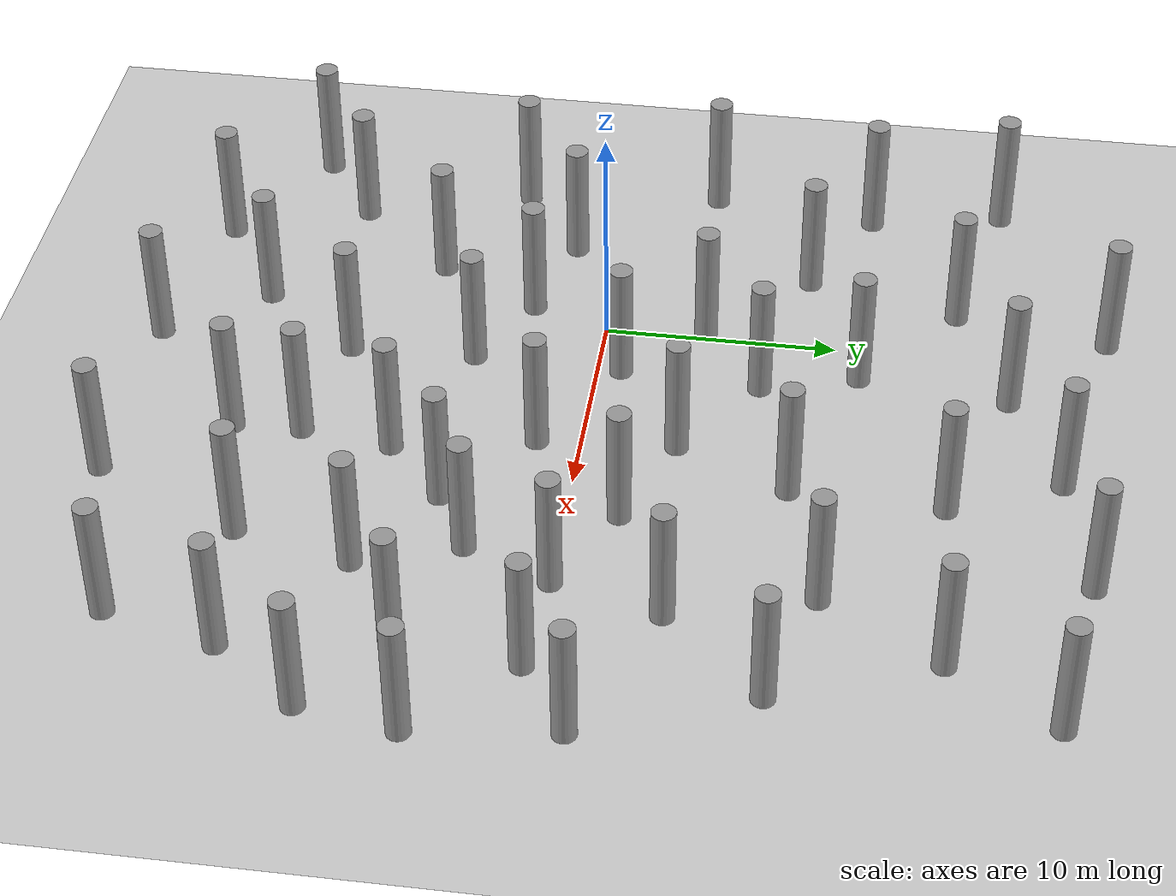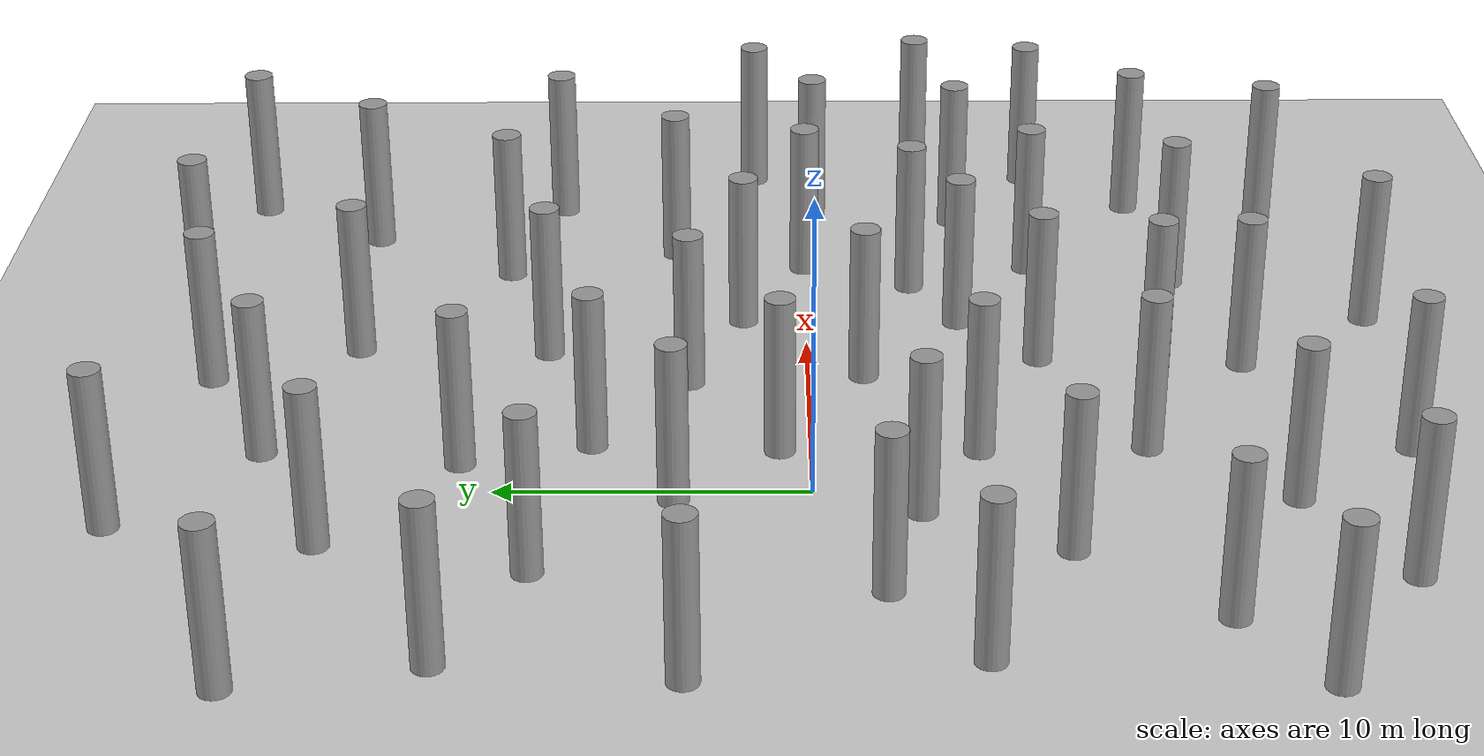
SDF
<sdf version="1.6">
 <world name="default">
  <model name="ground_plane">
   <static>1</static>
   <link name="link">
    <collision name="collision">
     <geometry><plane><normal>0 0 1</normal><size>400 400</size></plane></geometry>
     <surface><friction><ode><mu>100</mu><mu2>50</mu2></ode></friction></surface>
    </collision>
    <visual name="visual">
     <cast_shadows>0</cast_shadows>
     <geometry><plane><normal>0 0 1</normal><size>200 200</size></plane></geometry>
     <material>
      <script><uri>file://media/materials/scripts/gazebo.material</uri><name>Gazebo/Grey</name></script>
     </material>
    </visual>
    <gravity>0</gravity>
   </link>
  </model>
  <model name="unit_cylinder_0_clone_14_clone_9_clone_1">
   <static>1</static>
   <pose>24.5651 -4.32645 2.40172 0 -0 0.001073</pose>
   <link name="link">
    <inertial>
     <mass>1</mass>
     <inertia><ixx>0.145833</ixx><ixy>0</ixy><ixz>0</ixz><iyy>0.145833</iyy><iyz>0</iyz><izz>0.125</izz></inertia>
    </inertial>
    <collision name="collision">
     <geometry><cylinder><radius>0.5</radius><length>6.03342</length></cylinder></geometry>
     <surface><contact><collide_without_contact>1</collide_without_contact></contact></surface>
    </collision>
    <visual name="visual">
     <geometry><cylinder><radius>0.5</radius><length>6.03342</length></cylinder></geometry>
     <material>
      <script><name>Gazebo/Grey</name><uri>file://media/materials/scripts/gazebo.material</uri></script>
     </material>
    </visual>
    <gravity>0</gravity>
   </link>
  </model>
  <model name="unit_cylinder_0_clone_14_clone_9_clone_5">
   <static>1</static>
   <pose>23.8422 1.77062 2.40172 0 -0 0.001073</pose>
   <link name="link">
    <inertial>
     <mass>1</mass>
     <inertia><ixx>0.145833</ixx><ixy>0</ixy><ixz>0</ixz><iyy>0.145833</iyy><iyz>0</iyz><izz>0.125</izz></inertia>
    </inertial>
    <collision name="collision">
     <geometry><cylinder><radius>0.5</radius><length>6.03342</length></cylinder></geometry>
     <surface><contact><collide_without_contact>1</collide_without_contact></contact></surface>
    </collision>
    <visual name="visual">
     <geometry><cylinder><radius>0.5</radius><length>6.03342</length></cylinder></geometry>
     <material>
      <script><name>Gazebo/Grey</name><uri>file://media/materials/scripts/gazebo.material</uri></script>
     </material>
    </visual>
    <gravity>0</gravity>
   </link>
  </model>
  <model name="unit_cylinder_0_clone_14_clone_9_clone_6_clone">
   <static>1</static>
   <pose>17.2344 4.59319 2.40172 0 -0 0.001073</pose>
   <link name="link">
    <inertial>
     <mass>1</mass>
     <inertia><ixx>0.145833</ixx><ixy>0</ixy><ixz>0</ixz><iyy>0.145833</iyy><iyz>0</iyz><izz>0.125</izz></inertia>
    </inertial>
    <collision name="collision">
     <geometry><cylinder><radius>0.5</radius><length>6.03342</length></cylinder></geometry>
     <surface><contact><collide_without_contact>1</collide_without_contact></contact></surface>
    </collision>
    <visual name="visual">
     <geometry><cylinder><radius>0.5</radius><length>6.03342</length></cylinder></geometry>
     <material>
      <script><name>Gazebo/Grey</name><uri>file://media/materials/scripts/gazebo.material</uri></script>
     </material>
    </visual>
    <gravity>0</gravity>
   </link>
  </model>
  <model name="unit_cylinder_0_clone_14_clone_9_clone_6_clone_0">
   <static>1</static>
   <pose>16 0 2.40172 0 -0 0.001073</pose>
   <link name="link">
    <inertial>
     <mass>1</mass>
     <inertia><ixx>0.145833</ixx><ixy>0</ixy><ixz>0</ixz><iyy>0.145833</iyy><iyz>0</iyz><izz>0.125</izz></inertia>
    </inertial>
    <collision name="collision">
     <geometry><cylinder><radius>0.5</radius><length>6.03342</length></cylinder></geometry>
     <surface><contact><collide_without_contact>1</collide_without_contact></contact></surface>
    </collision>
    <visual name="visual">
     <geometry><cylinder><radius>0.5</radius><length>6.03342</length></cylinder></geometry>
     <material>
      <script><name>Gazebo/Grey</name><uri>file://media/materials/scripts/gazebo.material</uri></script>
     </material>
    </visual>
    <gravity>0</gravity>
   </link>
  </model>
  <model name="unit_cylinder_0_clone_14_clone_9_clone_6_clone_1">
   <static>1</static>
   <pose>15.9275 -8.02091 2.40172 0 -0 0.001073</pose>
   <link name="link">
    <inertial>
     <mass>1</mass>
     <inertia><ixx>0.145833</ixx><ixy>0</ixy><ixz>0</ixz><iyy>0.145833</iyy><iyz>0</iyz><izz>0.125</izz></inertia>
    </inertial>
    <collision name="collision">
     <geometry><cylinder><radius>0.5</radius><length>6.03342</length></cylinder></geometry>
     <surface><contact><collide_without_contact>1</collide_without_contact></contact></surface>
    </collision>
    <visual name="visual">
     <geometry><cylinder><radius>0.5</radius><length>6.03342</length></cylinder></geometry>
     <material>
      <script><name>Gazebo/Grey</name><uri>file://media/materials/scripts/gazebo.material</uri></script>
     </material>
    </visual>
    <gravity>0</gravity>
   </link>
  </model>
  <model name="unit_cylinder_0_clone_14_clone_9_clone_6_clone_3">
   <static>1</static>
   <pose>15.5728 10.4838 2.40172 0 -0 0.001073</pose>
   <link name="link">
    <inertial>
     <mass>1</mass>
     <inertia><ixx>0.145833</ixx><ixy>0</ixy><ixz>0</ixz><iyy>0.145833</iyy><iyz>0</iyz><izz>0.125</izz></inertia>
    </inertial>
    <collision name="collision">
     <geometry><cylinder><radius>0.5</radius><length>6.03342</length></cylinder></geometry>
     <surface><contact><collide_without_contact>1</collide_without_contact></contact></surface>
    </collision>
    <visual name="visual">
     <geometry><cylinder><radius>0.5</radius><length>6.03342</length></cylinder></geometry>
     <material>
      <script><name>Gazebo/Grey</name><uri>file://media/materials/scripts/gazebo.material</uri></script>
     </material>
    </visual>
    <gravity>0</gravity>
   </link>
  </model>
  <model name="unit_cylinder_0_clone_14_clone_9_clone_6_clone_7">
   <static>1</static>
   <pose>20.62 -0.359864 2.40172 0 -0 0.001073</pose>
   <link name="link">
    <inertial>
     <mass>1</mass>
     <inertia><ixx>0.145833</ixx><ixy>0</ixy><ixz>0</ixz><iyy>0.145833</iyy><iyz>0</iyz><izz>0.125</izz></inertia>
    </inertial>
    <collision name="collision">
     <geometry><cylinder><radius>0.5</radius><length>6.03342</length></cylinder></geometry>
     <surface><contact><collide_without_contact>1</collide_without_contact></contact></surface>
    </collision>
    <visual name="visual">
     <geometry><cylinder><radius>0.5</radius><length>6.03342</length></cylinder></geometry>
     <material>
      <script><name>Gazebo/Grey</name><uri>file://media/materials/scripts/gazebo.material</uri></script>
     </material>
    </visual>
    <gravity>0</gravity>
   </link>
  </model>
  <model name="unit_cylinder_0_clone_14_clone_9_clone_6_clone_8">
   <static>1</static>
   <pose>14.4535 -3.71562 2.40172 0 -0 0.001073</pose>
   <link name="link">
    <inertial>
     <mass>1</mass>
     <inertia><ixx>0.145833</ixx><ixy>0</ixy><ixz>0</ixz><iyy>0.145833</iyy><iyz>0</iyz><izz>0.125</izz></inertia>
    </inertial>
    <collision name="collision">
     <geometry><cylinder><radius>0.5</radius><length>6.03342</length></cylinder></geometry>
     <surface><contact><collide_without_contact>1</collide_without_contact></contact></surface>
    </collision>
    <visual name="visual">
     <geometry><cylinder><radius>0.5</radius><length>6.03342</length></cylinder></geometry>
     <material>
      <script><name>Gazebo/Grey</name><uri>file://media/materials/scripts/gazebo.material</uri></script>
     </material>
    </visual>
    <gravity>0</gravity>
   </link>
  </model>
  <model name="unit_cylinder_0_clone_14_clone_9_clone_1_clone">
   <static>1</static>
   <pose>19.9723 -5.56562 2.40172 0 -0 0.001073</pose>
   <link name="link">
    <inertial>
     <mass>1</mass>
     <inertia><ixx>0.145833</ixx><ixy>0</ixy><ixz>0</ixz><iyy>0.145833</iyy><iyz>0</iyz><izz>0.125</izz></inertia>
    </inertial>
    <collision name="collision">
     <geometry><cylinder><radius>0.5</radius><length>6.03342</length></cylinder></geometry>
     <surface><contact><collide_without_contact>1</collide_without_contact></contact></surface>
    </collision>
    <visual name="visual">
     <geometry><cylinder><radius>0.5</radius><length>6.03342</length></cylinder></geometry>
     <material>
      <script><name>Gazebo/Grey</name><uri>file://media/materials/scripts/gazebo.material</uri></script>
     </material>
    </visual>
    <gravity>0</gravity>
   </link>
  </model>
  <model name="unit_cylinder_0_clone_14_clone_9_clone_1_clone_0">
   <static>1</static>
   <pose>23.821 -8.50291 2.40172 0 -0 0.001073</pose>
   <link name="link">
    <inertial>
     <mass>1</mass>
     <inertia><ixx>0.145833</ixx><ixy>0</ixy><ixz>0</ixz><iyy>0.145833</iyy><iyz>0</iyz><izz>0.125</izz></inertia>
    </inertial>
    <collision name="collision">
     <geometry><cylinder><radius>0.5</radius><length>6.03342</length></cylinder></geometry>
     <surface><contact><collide_without_contact>1</collide_without_contact></contact></surface>
    </collision>
    <visual name="visual">
     <geometry><cylinder><radius>0.5</radius><length>6.03342</length></cylinder></geometry>
     <material>
      <script><name>Gazebo/Grey</name><uri>file://media/materials/scripts/gazebo.material</uri></script>
     </material>
    </visual>
    <gravity>0</gravity>
   </link>
  </model>
  <model name="unit_cylinder_0_clone_14_clone_9_clone_1_clone_1">
   <static>1</static>
   <pose>21.0632 8.86959 2.40172 0 -0 0.001073</pose>
   <link name="link">
    <inertial>
     <mass>1</mass>
     <inertia><ixx>0.145833</ixx><ixy>0</ixy><ixz>0</ixz><iyy>0.145833</iyy><iyz>0</iyz><izz>0.125</izz></inertia>
    </inertial>
    <collision name="collision">
     <geometry><cylinder><radius>0.5</radius><length>6.03342</length></cylinder></geometry>
     <surface><contact><collide_without_contact>1</collide_without_contact></contact></surface>
    </collision>
    <visual name="visual">
     <geometry><cylinder><radius>0.5</radius><length>6.03342</length></cylinder></geometry>
     <material>
      <script><name>Gazebo/Grey</name><uri>file://media/materials/scripts/gazebo.material</uri></script>
     </material>
    </visual>
    <gravity>0</gravity>
   </link>
  </model>
  <model name="unit_cylinder_0_clone_14_clone_9_clone_6_clone_3_clone">
   <static>1</static>
   <pose>9.40132 8.7634 2.40172 0 -0 0.001073</pose>
   <link name="link">
    <inertial>
     <mass>1</mass>
     <inertia><ixx>0.145833</ixx><ixy>0</ixy><ixz>0</ixz><iyy>0.145833</iyy><iyz>0</iyz><izz>0.125</izz></inertia>
    </inertial>
    <collision name="collision">
     <geometry><cylinder><radius>0.5</radius><length>6.03342</length></cylinder></geometry>
     <surface><contact><collide_without_contact>1</collide_without_contact></contact></surface>
    </collision>
    <visual name="visual">
     <geometry><cylinder><radius>0.5</radius><length>6.03342</length></cylinder></geometry>
     <material>
      <script><name>Gazebo/Grey</name><uri>file://media/materials/scripts/gazebo.material</uri></script>
     </material>
    </visual>
    <gravity>0</gravity>
   </link>
  </model>
  <model name="unit_cylinder_0_clone_14_clone_9_clone_6_clone_3_clone_0">
   <static>1</static>
   <pose>7.25639 3.9523 2.40172 0 -0 0.001073</pose>
   <link name="link">
    <inertial>
     <mass>1</mass>
     <inertia><ixx>0.145833</ixx><ixy>0</ixy><ixz>0</ixz><iyy>0.145833</iyy><iyz>0</iyz><izz>0.125</izz></inertia>
    </inertial>
    <collision name="collision">
     <geometry><cylinder><radius>0.5</radius><length>6.03342</length></cylinder></geometry>
     <surface><contact><collide_without_contact>1</collide_without_contact></contact></surface>
    </collision>
    <visual name="visual">
     <geometry><cylinder><radius>0.5</radius><length>6.03342</length></cylinder></geometry>
     <material>
      <script><name>Gazebo/Grey</name><uri>file://media/materials/scripts/gazebo.material</uri></script>
     </material>
    </visual>
    <gravity>0</gravity>
   </link>
  </model>
  <model name="unit_cylinder_0_clone_14_clone_9_clone_6_clone_3_clone_1">
   <static>1</static>
   <pose>7.67753 -1.86181 2.40172 0 -0 0.001073</pose>
   <link name="link">
    <inertial>
     <mass>1</mass>
     <inertia><ixx>0.145833</ixx><ixy>0</ixy><ixz>0</ixz><iyy>0.145833</iyy><iyz>0</iyz><izz>0.125</izz></inertia>
    </inertial>
    <collision name="collision">
     <geometry><cylinder><radius>0.5</radius><length>6.03342</length></cylinder></geometry>
     <surface><contact><collide_without_contact>1</collide_without_contact></contact></surface>
    </collision>
    <visual name="visual">
     <geometry><cylinder><radius>0.5</radius><length>6.03342</length></cylinder></geometry>
     <material>
      <script><name>Gazebo/Grey</name><uri>file://media/materials/scripts/gazebo.material</uri></script>
     </material>
    </visual>
    <gravity>0</gravity>
   </link>
  </model>
  <model name="unit_cylinder_0_clone_14_clone_9_clone_6_clone_3_clone_2">
   <static>1</static>
   <pose>3 7 2.40172 0 -0 0.001073</pose>
   <link name="link">
    <inertial>
     <mass>1</mass>
     <inertia><ixx>0.145833</ixx><ixy>0</ixy><ixz>0</ixz><iyy>0.145833</iyy><iyz>0</iyz><izz>0.125</izz></inertia>
    </inertial>
    <collision name="collision">
     <geometry><cylinder><radius>0.5</radius><length>6.03342</length></cylinder></geometry>
     <surface><contact><collide_without_contact>1</collide_without_contact></contact></surface>
    </collision>
    <visual name="visual">
     <geometry><cylinder><radius>0.5</radius><length>6.03342</length></cylinder></geometry>
     <material>
      <script><name>Gazebo/Grey</name><uri>file://media/materials/scripts/gazebo.material</uri></script>
     </material>
    </visual>
    <gravity>0</gravity>
   </link>
  </model>
  <model name="unit_cylinder_0_clone_14_clone_9_clone_6_clone_3_clone_3">
   <static>1</static>
   <pose>2.62841 0.991234 2.40172 0 -0 0.001073</pose>
   <link name="link">
    <inertial>
     <mass>1</mass>
     <inertia><ixx>0.145833</ixx><ixy>0</ixy><ixz>0</ixz><iyy>0.145833</iyy><iyz>0</iyz><izz>0.125</izz></inertia>
    </inertial>
    <collision name="collision">
     <geometry><cylinder><radius>0.5</radius><length>6.03342</length></cylinder></geometry>
     <surface><contact><collide_without_contact>1</collide_without_contact></contact></surface>
    </collision>
    <visual name="visual">
     <geometry><cylinder><radius>0.5</radius><length>6.03342</length></cylinder></geometry>
     <material>
      <script><name>Gazebo/Grey</name><uri>file://media/materials/scripts/gazebo.material</uri></script>
     </material>
    </visual>
    <gravity>0</gravity>
   </link>
  </model>
  <model name="unit_cylinder_0_clone_14_clone_9_clone_6_clone_3_clone_4">
   <static>1</static>
   <pose>2.51783 -5.37737 2.40172 0 -0 0.001073</pose>
   <link name="link">
    <inertial>
     <mass>1</mass>
     <inertia><ixx>0.145833</ixx><ixy>0</ixy><ixz>0</ixz><iyy>0.145833</iyy><iyz>0</iyz><izz>0.125</izz></inertia>
    </inertial>
    <collision name="collision">
     <geometry><cylinder><radius>0.5</radius><length>6.03342</length></cylinder></geometry>
     <surface><contact><collide_without_contact>1</collide_without_contact></contact></surface>
    </collision>
    <visual name="visual">
     <geometry><cylinder><radius>0.5</radius><length>6.03342</length></cylinder></geometry>
     <material>
      <script><name>Gazebo/Grey</name><uri>file://media/materials/scripts/gazebo.material</uri></script>
     </material>
    </visual>
    <gravity>0</gravity>
   </link>
  </model>
  <model name="unit_cylinder_0_clone_14_clone_9_clone_6_clone_3_clone_5">
   <static>1</static>
   <pose>8.83799 -7.80804 2.40172 0 -0 0.001073</pose>
   <link name="link">
    <inertial>
     <mass>1</mass>
     <inertia><ixx>0.145833</ixx><ixy>0</ixy><ixz>0</ixz><iyy>0.145833</iyy><iyz>0</iyz><izz>0.125</izz></inertia>
    </inertial>
    <collision name="collision">
     <geometry><cylinder><radius>0.5</radius><length>6.03342</length></cylinder></geometry>
     <surface><contact><collide_without_contact>1</collide_without_contact></contact></surface>
    </collision>
    <visual name="visual">
     <geometry><cylinder><radius>0.5</radius><length>6.03342</length></cylinder></geometry>
     <material>
      <script><name>Gazebo/Grey</name><uri>file://media/materials/scripts/gazebo.material</uri></script>
     </material>
    </visual>
    <gravity>0</gravity>
   </link>
  </model>
  <model name="unit_cylinder_0_clone_14_clone_9_clone_6_clone_3_clone_6">
   <static>1</static>
   <pose>-0.445316 4.32118 2.40172 0 -0 0.001073</pose>
   <link name="link">
    <inertial>
     <mass>1</mass>
     <inertia><ixx>0.145833</ixx><ixy>0</ixy><ixz>0</ixz><iyy>0.145833</iyy><iyz>0</iyz><izz>0.125</izz></inertia>
    </inertial>
    <collision name="collision">
     <geometry><cylinder><radius>0.5</radius><length>6.03342</length></cylinder></geometry>
     <surface><contact><collide_without_contact>1</collide_without_contact></contact></surface>
    </collision>
    <visual name="visual">
     <geometry><cylinder><radius>0.5</radius><length>6.03342</length></cylinder></geometry>
     <material>
      <script><name>Gazebo/Grey</name><uri>file://media/materials/scripts/gazebo.material</uri></script>
     </material>
    </visual>
    <gravity>0</gravity>
   </link>
  </model>
  <model name="unit_cylinder_0_clone_14_clone_9_clone_6_clone_3_clone_7">
   <static>1</static>
   <pose>-1.26097 -3.357 2.40172 0 -0 0.001073</pose>
   <link name="link">
    <inertial>
     <mass>1</mass>
     <inertia><ixx>0.145833</ixx><ixy>0</ixy><ixz>0</ixz><iyy>0.145833</iyy><iyz>0</iyz><izz>0.125</izz></inertia>
    </inertial>
    <collision name="collision">
     <geometry><cylinder><radius>0.5</radius><length>6.03342</length></cylinder></geometry>
     <surface><contact><collide_without_contact>1</collide_without_contact></contact></surface>
    </collision>
    <visual name="visual">
     <geometry><cylinder><radius>0.5</radius><length>6.03342</length></cylinder></geometry>
     <material>
      <script><name>Gazebo/Grey</name><uri>file://media/materials/scripts/gazebo.material</uri></script>
     </material>
    </visual>
    <gravity>0</gravity>
   </link>
  </model>
  <model name="unit_cylinder_0_clone_14_clone_9_clone_6_clone_3_clone_9">
   <static>1</static>
   <pose>-3.53682 -7.78165 2.40172 0 -0 0.001073</pose>
   <link name="link">
    <inertial>
     <mass>1</mass>
     <inertia><ixx>0.145833</ixx><ixy>0</ixy><ixz>0</ixz><iyy>0.145833</iyy><iyz>0</iyz><izz>0.125</izz></inertia>
    </inertial>
    <collision name="collision">
     <geometry><cylinder><radius>0.5</radius><length>6.03342</length></cylinder></geometry>
     <surface><contact><collide_without_contact>1</collide_without_contact></contact></surface>
    </collision>
    <visual name="visual">
     <geometry><cylinder><radius>0.5</radius><length>6.03342</length></cylinder></geometry>
     <material>
      <script><name>Gazebo/Grey</name><uri>file://media/materials/scripts/gazebo.material</uri></script>
     </material>
    </visual>
    <gravity>0</gravity>
   </link>
  </model>
  <model name="unit_cylinder_0_clone_14_clone_9_clone_6_clone_3_clone_10">
   <static>1</static>
   <pose>2.69205 -10.772 2.40172 0 -0 0.001073</pose>
   <link name="link">
    <inertial>
     <mass>1</mass>
     <inertia><ixx>0.145833</ixx><ixy>0</ixy><ixz>0</ixz><iyy>0.145833</iyy><iyz>0</iyz><izz>0.125</izz></inertia>
    </inertial>
    <collision name="collision">
     <geometry><cylinder><radius>0.5</radius><length>6.03342</length></cylinder></geometry>
     <surface><contact><collide_without_contact>1</collide_without_contact></contact></surface>
    </collision>
    <visual name="visual">
     <geometry><cylinder><radius>0.5</radius><length>6.03342</length></cylinder></geometry>
     <material>
      <script><name>Gazebo/Grey</name><uri>file://media/materials/scripts/gazebo.material</uri></script>
     </material>
    </visual>
    <gravity>0</gravity>
   </link>
  </model>
  <model name="unit_cylinder_0_clone_14_clone_9_clone_6_clone_3_clone_11">
   <static>1</static>
   <pose>-4.63021 8.56976 2.40172 0 -0 0.001073</pose>
   <link name="link">
    <inertial>
     <mass>1</mass>
     <inertia><ixx>0.145833</ixx><ixy>0</ixy><ixz>0</ixz><iyy>0.145833</iyy><iyz>0</iyz><izz>0.125</izz></inertia>
    </inertial>
    <collision name="collision">
     <geometry><cylinder><radius>0.5</radius><length>6.03342</length></cylinder></geometry>
     <surface><contact><collide_without_contact>1</collide_without_contact></contact></surface>
    </collision>
    <visual name="visual">
     <geometry><cylinder><radius>0.5</radius><length>6.03342</length></cylinder></geometry>
     <material>
      <script><name>Gazebo/Grey</name><uri>file://media/materials/scripts/gazebo.material</uri></script>
     </material>
    </visual>
    <gravity>0</gravity>
   </link>
  </model>
  <model name="unit_cylinder_0_clone_14_clone_9_clone_6_clone_3_clone_12">
   <static>1</static>
   <pose>1.83441 11.1369 2.40172 0 -0 0.001073</pose>
   <link name="link">
    <inertial>
     <mass>1</mass>
     <inertia><ixx>0.145833</ixx><ixy>0</ixy><ixz>0</ixz><iyy>0.145833</iyy><iyz>0</iyz><izz>0.125</izz></inertia>
    </inertial>
    <collision name="collision">
     <geometry><cylinder><radius>0.5</radius><length>6.03342</length></cylinder></geometry>
     <surface><contact><collide_without_contact>1</collide_without_contact></contact></surface>
    </collision>
    <visual name="visual">
     <geometry><cylinder><radius>0.5</radius><length>6.03342</length></cylinder></geometry>
     <material>
      <script><name>Gazebo/Grey</name><uri>file://media/materials/scripts/gazebo.material</uri></script>
     </material>
    </visual>
    <gravity>0</gravity>
   </link>
  </model>
  <model name="unit_cylinder_0_clone_14_clone_9_clone_6_clone_3_clone_13">
   <static>1</static>
   <pose>14.7274 -13.0156 2.40172 0 -0 0.001073</pose>
   <link name="link">
    <inertial>
     <mass>1</mass>
     <inertia><ixx>0.145833</ixx><ixy>0</ixy><ixz>0</ixz><iyy>0.145833</iyy><iyz>0</iyz><izz>0.125</izz></inertia>
    </inertial>
    <collision name="collision">
     <geometry><cylinder><radius>0.5</radius><length>6.03342</length></cylinder></geometry>
     <surface><contact><collide_without_contact>1</collide_without_contact></contact></surface>
    </collision>
    <visual name="visual">
     <geometry><cylinder><radius>0.5</radius><length>6.03342</length></cylinder></geometry>
     <material>
      <script><name>Gazebo/Grey</name><uri>file://media/materials/scripts/gazebo.material</uri></script>
     </material>
    </visual>
    <gravity>0</gravity>
   </link>
  </model>
  <model name="unit_cylinder_0_clone_14_clone_9_clone_6_clone_3_clone_15">
   <static>1</static>
   <pose>-9.41044 -4.85539 2.40172 0 -0 0.001073</pose>
   <link name="link">
    <inertial>
     <mass>1</mass>
     <inertia><ixx>0.145833</ixx><ixy>0</ixy><ixz>0</ixz><iyy>0.145833</iyy><iyz>0</iyz><izz>0.125</izz></inertia>
    </inertial>
    <collision name="collision">
     <geometry><cylinder><radius>0.5</radius><length>6.03342</length></cylinder></geometry>
     <surface><contact><collide_without_contact>1</collide_without_contact></contact></surface>
    </collision>
    <visual name="visual">
     <geometry><cylinder><radius>0.5</radius><length>6.03342</length></cylinder></geometry>
     <material>
      <script><name>Gazebo/Grey</name><uri>file://media/materials/scripts/gazebo.material</uri></script>
     </material>
    </visual>
    <gravity>0</gravity>
   </link>
  </model>
  <model name="unit_cylinder_0_clone_14_clone_9_clone_6_clone_3_clone_16">
   <static>1</static>
   <pose>-10.3509 3.82373 2.40172 0 -0 0.001073</pose>
   <link name="link">
    <inertial>
     <mass>1</mass>
     <inertia><ixx>0.145833</ixx><ixy>0</ixy><ixz>0</ixz><iyy>0.145833</iyy><iyz>0</iyz><izz>0.125</izz></inertia>
    </inertial>
    <collision name="collision">
     <geometry><cylinder><radius>0.5</radius><length>6.03342</length></cylinder></geometry>
     <surface><contact><collide_without_contact>1</collide_without_contact></contact></surface>
    </collision>
    <visual name="visual">
     <geometry><cylinder><radius>0.5</radius><length>6.03342</length></cylinder></geometry>
     <material>
      <script><name>Gazebo/Grey</name><uri>file://media/materials/scripts/gazebo.material</uri></script>
     </material>
    </visual>
    <gravity>0</gravity>
   </link>
  </model>
  <model name="unit_cylinder_0_clone_14_clone_9_clone_6_clone_3_clone_8">
   <static>1</static>
   <pose>11.796 2.16375 2.40172 0 -0 0.001073</pose>
   <link name="link">
    <inertial>
     <mass>1</mass>
     <inertia><ixx>0.145833</ixx><ixy>0</ixy><ixz>0</ixz><iyy>0.145833</iyy><iyz>0</iyz><izz>0.125</izz></inertia>
    </inertial>
    <collision name="collision">
     <geometry><cylinder><radius>0.5</radius><length>6.03342</length></cylinder></geometry>
     <surface><contact><collide_without_contact>1</collide_without_contact></contact></surface>
    </collision>
    <visual name="visual">
     <geometry><cylinder><radius>0.5</radius><length>6.03342</length></cylinder></geometry>
     <material>
      <script><name>Gazebo/Grey</name><uri>file://media/materials/scripts/gazebo.material</uri></script>
     </material>
    </visual>
    <gravity>0</gravity>
   </link>
  </model>
  <model name="unit_cylinder_0_clone_14_clone_9_clone_6_clone_3_clone_17">
   <static>1</static>
   <pose>8.37013 -14.658 2.40172 0 -0 0.001073</pose>
   <link name="link">
    <inertial>
     <mass>1</mass>
     <inertia><ixx>0.145833</ixx><ixy>0</ixy><ixz>0</ixz><iyy>0.145833</iyy><iyz>0</iyz><izz>0.125</izz></inertia>
    </inertial>
    <collision name="collision">
     <geometry><cylinder><radius>0.5</radius><length>6.03342</length></cylinder></geometry>
     <surface><contact><collide_without_contact>1</collide_without_contact></contact></surface>
    </collision>
    <visual name="visual">
     <geometry><cylinder><radius>0.5</radius><length>6.03342</length></cylinder></geometry>
     <material>
      <script><name>Gazebo/Grey</name><uri>file://media/materials/scripts/gazebo.material</uri></script>
     </material>
    </visual>
    <gravity>0</gravity>
   </link>
  </model>
  <model name="unit_cylinder_0_clone_14_clone_9_clone_6_clone_3_clone_18">
   <static>1</static>
   <pose>9.67151 15.2058 2.40172 0 -0 0.001073</pose>
   <link name="link">
    <inertial>
     <mass>1</mass>
     <inertia><ixx>0.145833</ixx><ixy>0</ixy><ixz>0</ixz><iyy>0.145833</iyy><iyz>0</iyz><izz>0.125</izz></inertia>
    </inertial>
    <collision name="collision">
     <geometry><cylinder><radius>0.5</radius><length>6.03342</length></cylinder></geometry>
     <surface><contact><collide_without_contact>1</collide_without_contact></contact></surface>
    </collision>
    <visual name="visual">
     <geometry><cylinder><radius>0.5</radius><length>6.03342</length></cylinder></geometry>
     <material>
      <script><name>Gazebo/Grey</name><uri>file://media/materials/scripts/gazebo.material</uri></script>
     </material>
    </visual>
    <gravity>0</gravity>
   </link>
  </model>
  <model name="unit_cylinder_0_clone_14_clone_9_clone_6_clone_3_clone_18_clone">
   <static>1</static>
   <pose>18.4613 15.5209 2.40172 0 -0 0.001073</pose>
   <link name="link">
    <inertial>
     <mass>1</mass>
     <inertia><ixx>0.145833</ixx><ixy>0</ixy><ixz>0</ixz><iyy>0.145833</iyy><iyz>0</iyz><izz>0.125</izz></inertia>
    </inertial>
    <collision name="collision">
     <geometry><cylinder><radius>0.5</radius><length>6.03342</length></cylinder></geometry>
     <surface><contact><collide_without_contact>1</collide_without_contact></contact></surface>
    </collision>
    <visual name="visual">
     <geometry><cylinder><radius>0.5</radius><length>6.03342</length></cylinder></geometry>
     <material>
      <script><name>Gazebo/Grey</name><uri>file://media/materials/scripts/gazebo.material</uri></script>
     </material>
    </visual>
    <gravity>0</gravity>
   </link>
  </model>
  <model name="unit_cylinder_0_clone_14_clone_9_clone_6_clone_3_clone_18_clone_0">
   <static>1</static>
   <pose>2.58849 17.5445 2.40172 0 -0 0.001073</pose>
   <link name="link">
    <inertial>
     <mass>1</mass>
     <inertia><ixx>0.145833</ixx><ixy>0</ixy><ixz>0</ixz><iyy>0.145833</iyy><iyz>0</iyz><izz>0.125</izz></inertia>
    </inertial>
    <collision name="collision">
     <geometry><cylinder><radius>0.5</radius><length>6.03342</length></cylinder></geometry>
     <surface><contact><collide_without_contact>1</collide_without_contact></contact></surface>
    </collision>
    <visual name="visual">
     <geometry><cylinder><radius>0.5</radius><length>6.03342</length></cylinder></geometry>
     <material>
      <script><name>Gazebo/Grey</name><uri>file://media/materials/scripts/gazebo.material</uri></script>
     </material>
    </visual>
    <gravity>0</gravity>
   </link>
  </model>
  <model name="unit_cylinder_0_clone_14_clone_9_clone_6_clone_3_clone_18_clone_1">
   <static>1</static>
   <pose>-3.02406 15.1252 2.40172 0 -0 0.001073</pose>
   <link name="link">
    <inertial>
     <mass>1</mass>
     <inertia><ixx>0.145833</ixx><ixy>0</ixy><ixz>0</ixz><iyy>0.145833</iyy><iyz>0</iyz><izz>0.125</izz></inertia>
    </inertial>
    <collision name="collision">
     <geometry><cylinder><radius>0.5</radius><length>6.03342</length></cylinder></geometry>
     <surface><contact><collide_without_contact>1</collide_without_contact></contact></surface>
    </collision>
    <visual name="visual">
     <geometry><cylinder><radius>0.5</radius><length>6.03342</length></cylinder></geometry>
     <material>
      <script><name>Gazebo/Grey</name><uri>file://media/materials/scripts/gazebo.material</uri></script>
     </material>
    </visual>
    <gravity>0</gravity>
   </link>
  </model>
  <model name="unit_cylinder_0_clone_14_clone_9_clone_6_clone_3_clone_18_clone_2">
   <static>1</static>
   <pose>-10.6607 16.8177 2.40172 0 -0 0.001073</pose>
   <link name="link">
    <inertial>
     <mass>1</mass>
     <inertia><ixx>0.145833</ixx><ixy>0</ixy><ixz>0</ixz><iyy>0.145833</iyy><iyz>0</iyz><izz>0.125</izz></inertia>
    </inertial>
    <collision name="collision">
     <geometry><cylinder><radius>0.5</radius><length>6.03342</length></cylinder></geometry>
     <surface><contact><collide_without_contact>1</collide_without_contact></contact></surface>
    </collision>
    <visual name="visual">
     <geometry><cylinder><radius>0.5</radius><length>6.03342</length></cylinder></geometry>
     <material>
      <script><name>Gazebo/Grey</name><uri>file://media/materials/scripts/gazebo.material</uri></script>
     </material>
    </visual>
    <gravity>0</gravity>
   </link>
  </model>
  <model name="unit_cylinder_0_clone_14_clone_9_clone_6_clone_3_clone_18_clone_3">
   <static>1</static>
   <pose>-9.53338 11.0193 2.40172 0 -0 0.001073</pose>
   <link name="link">
    <inertial>
     <mass>1</mass>
     <inertia><ixx>0.145833</ixx><ixy>0</ixy><ixz>0</ixz><iyy>0.145833</iyy><iyz>0</iyz><izz>0.125</izz></inertia>
    </inertial>
    <collision name="collision">
     <geometry><cylinder><radius>0.5</radius><length>6.03342</length></cylinder></geometry>
     <surface><contact><collide_without_contact>1</collide_without_contact></contact></surface>
    </collision>
    <visual name="visual">
     <geometry><cylinder><radius>0.5</radius><length>6.03342</length></cylinder></geometry>
     <material>
      <script><name>Gazebo/Grey</name><uri>file://media/materials/scripts/gazebo.material</uri></script>
     </material>
    </visual>
    <gravity>0</gravity>
   </link>
  </model>
  <model name="unit_cylinder_0_clone_14_clone_9_clone_6_clone_3_clone_18_clone_4">
   <static>1</static>
   <pose>-5.77056 -2.129 2.40172 0 -0 0.001073</pose>
   <link name="link">
    <inertial>
     <mass>1</mass>
     <inertia><ixx>0.145833</ixx><ixy>0</ixy><ixz>0</ixz><iyy>0.145833</iyy><iyz>0</iyz><izz>0.125</izz></inertia>
    </inertial>
    <collision name="collision">
     <geometry><cylinder><radius>0.5</radius><length>6.03342</length></cylinder></geometry>
     <surface><contact><collide_without_contact>1</collide_without_contact></contact></surface>
    </collision>
    <visual name="visual">
     <geometry><cylinder><radius>0.5</radius><length>6.03342</length></cylinder></geometry>
     <material>
      <script><name>Gazebo/Grey</name><uri>file://media/materials/scripts/gazebo.material</uri></script>
     </material>
    </visual>
    <gravity>0</gravity>
   </link>
  </model>
  <model name="unit_cylinder_0_clone_14_clone_9_clone_6_clone_3_clone_18_clone_5">
   <static>1</static>
   <pose>-7.24573 -12.0876 2.40172 0 -0 0.001073</pose>
   <link name="link">
    <inertial>
     <mass>1</mass>
     <inertia><ixx>0.145833</ixx><ixy>0</ixy><ixz>0</ixz><iyy>0.145833</iyy><iyz>0</iyz><izz>0.125</izz></inertia>
    </inertial>
    <collision name="collision">
     <geometry><cylinder><radius>0.5</radius><length>6.03342</length></cylinder></geometry>
     <surface><contact><collide_without_contact>1</collide_without_contact></contact></surface>
    </collision>
    <visual name="visual">
     <geometry><cylinder><radius>0.5</radius><length>6.03342</length></cylinder></geometry>
     <material>
      <script><name>Gazebo/Grey</name><uri>file://media/materials/scripts/gazebo.material</uri></script>
     </material>
    </visual>
    <gravity>0</gravity>
   </link>
  </model>
  <model name="unit_cylinder_0_clone_14_clone_9_clone_6_clone_3_clone_18_clone_6">
   <static>1</static>
   <pose>-0.546258 -15.0837 2.40172 0 -0 0.001073</pose>
   <link name="link">
    <inertial>
     <mass>1</mass>
     <inertia><ixx>0.145833</ixx><ixy>0</ixy><ixz>0</ixz><iyy>0.145833</iyy><iyz>0</iyz><izz>0.125</izz></inertia>
    </inertial>
    <collision name="collision">
     <geometry><cylinder><radius>0.5</radius><length>6.03342</length></cylinder></geometry>
     <surface><contact><collide_without_contact>1</collide_without_contact></contact></surface>
    </collision>
    <visual name="visual">
     <geometry><cylinder><radius>0.5</radius><length>6.03342</length></cylinder></geometry>
     <material>
      <script><name>Gazebo/Grey</name><uri>file://media/materials/scripts/gazebo.material</uri></script>
     </material>
    </visual>
    <gravity>0</gravity>
   </link>
  </model>
  <model name="unit_cylinder_0_clone_14_clone_9_clone_6_clone_3_clone_18_clone_7">
   <static>1</static>
   <pose>8.30343 -11.7126 2.40172 0 -0 0.001073</pose>
   <link name="link">
    <inertial>
     <mass>1</mass>
     <inertia><ixx>0.145833</ixx><ixy>0</ixy><ixz>0</ixz><iyy>0.145833</iyy><iyz>0</iyz><izz>0.125</izz></inertia>
    </inertial>
    <collision name="collision">
     <geometry><cylinder><radius>0.5</radius><length>6.03342</length></cylinder></geometry>
     <surface><contact><collide_without_contact>1</collide_without_contact></contact></surface>
    </collision>
    <visual name="visual">
     <geometry><cylinder><radius>0.5</radius><length>6.03342</length></cylinder></geometry>
     <material>
      <script><name>Gazebo/Grey</name><uri>file://media/materials/scripts/gazebo.material</uri></script>
     </material>
    </visual>
    <gravity>0</gravity>
   </link>
  </model>
  <model name="unit_cylinder_0_clone_14_clone_9_clone_6_clone_3_clone_18_clone_8">
   <static>1</static>
   <pose>11.6162 -5.24125 2.40172 0 -0 0.001073</pose>
   <link name="link">
    <inertial>
     <mass>1</mass>
     <inertia><ixx>0.145833</ixx><ixy>0</ixy><ixz>0</ixz><iyy>0.145833</iyy><iyz>0</iyz><izz>0.125</izz></inertia>
    </inertial>
    <collision name="collision">
     <geometry><cylinder><radius>0.5</radius><length>6.03342</length></cylinder></geometry>
     <surface><contact><collide_without_contact>1</collide_without_contact></contact></surface>
    </collision>
    <visual name="visual">
     <geometry><cylinder><radius>0.5</radius><length>6.03342</length></cylinder></geometry>
     <material>
      <script><name>Gazebo/Grey</name><uri>file://media/materials/scripts/gazebo.material</uri></script>
     </material>
    </visual>
    <gravity>0</gravity>
   </link>
  </model>
  <model name="unit_cylinder_0_clone_14_clone_9_clone_6_clone_3_clone_18_clone_9">
   <static>1</static>
   <pose>21.1423 -12.1649 2.40172 0 -0 0.001073</pose>
   <link name="link">
    <inertial>
     <mass>1</mass>
     <inertia><ixx>0.145833</ixx><ixy>0</ixy><ixz>0</ixz><iyy>0.145833</iyy><iyz>0</iyz><izz>0.125</izz></inertia>
    </inertial>
    <collision name="collision">
     <geometry><cylinder><radius>0.5</radius><length>6.03342</length></cylinder></geometry>
     <surface><contact><collide_without_contact>1</collide_without_contact></contact></surface>
    </collision>
    <visual name="visual">
     <geometry><cylinder><radius>0.5</radius><length>6.03342</length></cylinder></geometry>
     <material>
      <script><name>Gazebo/Grey</name><uri>file://media/materials/scripts/gazebo.material</uri></script>
     </material>
    </visual>
    <gravity>0</gravity>
   </link>
  </model>
  <model name="unit_cylinder_0_clone_14_clone_9_clone_6_clone_3_clone_18_clone_12">
   <static>1</static>
   <pose>-10.7162 -14.5411 2.40172 0 -0 0.001073</pose>
   <link name="link">
    <inertial>
     <mass>1</mass>
     <inertia><ixx>0.145833</ixx><ixy>0</ixy><ixz>0</ixz><iyy>0.145833</iyy><iyz>0</iyz><izz>0.125</izz></inertia>
    </inertial>
    <collision name="collision">
     <geometry><cylinder><radius>0.5</radius><length>6.03342</length></cylinder></geometry>
     <surface><contact><collide_without_contact>1</collide_without_contact></contact></surface>
    </collision>
    <visual name="visual">
     <geometry><cylinder><radius>0.5</radius><length>6.03342</length></cylinder></geometry>
     <material>
      <script><name>Gazebo/Grey</name><uri>file://media/materials/scripts/gazebo.material</uri></script>
     </material>
    </visual>
    <gravity>0</gravity>
   </link>
  </model>
  <model name="unit_cylinder_0_clone_14_clone_9_clone_6_clone_3_clone_18_clone_14">
   <static>1</static>
   <pose>19.8893 -16.9715 2.40172 0 -0 0.001073</pose>
   <link name="link">
    <inertial>
     <mass>1</mass>
     <inertia><ixx>0.145833</ixx><ixy>0</ixy><ixz>0</ixz><iyy>0.145833</iyy><iyz>0</iyz><izz>0.125</izz></inertia>
    </inertial>
    <collision name="collision">
     <geometry><cylinder><radius>0.5</radius><length>6.03342</length></cylinder></geometry>
     <surface><contact><collide_without_contact>1</collide_without_contact></contact></surface>
    </collision>
    <visual name="visual">
     <geometry><cylinder><radius>0.5</radius><length>6.03342</length></cylinder></geometry>
     <material>
      <script><name>Gazebo/Grey</name><uri>file://media/materials/scripts/gazebo.material</uri></script>
     </material>
    </visual>
    <gravity>0</gravity>
   </link>
  </model>
  <model name="unit_cylinder_0_clone_14_clone_9_clone_6_clone_3_clone_18_clone_16">
   <static>1</static>
   <pose>13.4851 21.1652 2.40172 0 -0 0.001073</pose>
   <link name="link">
    <inertial>
     <mass>1</mass>
     <inertia><ixx>0.145833</ixx><ixy>0</ixy><ixz>0</ixz><iyy>0.145833</iyy><iyz>0</iyz><izz>0.125</izz></inertia>
    </inertial>
    <collision name="collision">
     <geometry><cylinder><radius>0.5</radius><length>6.03342</length></cylinder></geometry>
     <surface><contact><collide_without_contact>1</collide_without_contact></contact></surface>
    </collision>
    <visual name="visual">
     <geometry><cylinder><radius>0.5</radius><length>6.03342</length></cylinder></geometry>
     <material>
      <script><name>Gazebo/Grey</name><uri>file://media/materials/scripts/gazebo.material</uri></script>
     </material>
    </visual>
    <gravity>0</gravity>
   </link>
  </model>
  <model name="unit_cylinder_0_clone_14_clone_9_clone_6_clone_3_clone_18_clone_17">
   <static>1</static>
   <pose>11.7557 -19.437 2.40172 0 -0 0.001073</pose>
   <link name="link">
    <inertial>
     <mass>1</mass>
     <inertia><ixx>0.145833</ixx><ixy>0</ixy><ixz>0</ixz><iyy>0.145833</iyy><iyz>0</iyz><izz>0.125</izz></inertia>
    </inertial>
    <collision name="collision">
     <geometry><cylinder><radius>0.5</radius><length>6.03342</length></cylinder></geometry>
     <surface><contact><collide_without_contact>1</collide_without_contact></contact></surface>
    </collision>
    <visual name="visual">
     <geometry><cylinder><radius>0.5</radius><length>6.03342</length></cylinder></geometry>
     <material>
      <script><name>Gazebo/Grey</name><uri>file://media/materials/scripts/gazebo.material</uri></script>
     </material>
    </visual>
    <gravity>0</gravity>
   </link>
  </model>
  <model name="unit_cylinder_0_clone_14_clone_9_clone_6_clone_3_clone_18_clone_18">
   <static>1</static>
   <pose>-1.90169 21.6796 2.40172 0 -0 0.001073</pose>
   <link name="link">
    <inertial>
     <mass>1</mass>
     <inertia><ixx>0.145833</ixx><ixy>0</ixy><ixz>0</ixz><iyy>0.145833</iyy><iyz>0</iyz><izz>0.125</izz></inertia>
    </inertial>
    <collision name="collision">
     <geometry><cylinder><radius>0.5</radius><length>6.03342</length></cylinder></geometry>
     <surface><contact><collide_without_contact>1</collide_without_contact></contact></surface>
    </collision>
    <visual name="visual">
     <geometry><cylinder><radius>0.5</radius><length>6.03342</length></cylinder></geometry>
     <material>
      <script><name>Gazebo/Grey</name><uri>file://media/materials/scripts/gazebo.material</uri></script>
     </material>
    </visual>
    <gravity>0</gravity>
   </link>
  </model>
  <model name="unit_cylinder_0_clone_14_clone_9_clone_6_clone_3_clone_18_clone_19">
   <static>1</static>
   <pose>2.60141 -19.236 2.40172 0 -0 0.001073</pose>
   <link name="link">
    <inertial>
     <mass>1</mass>
     <inertia><ixx>0.145833</ixx><ixy>0</ixy><ixz>0</ixz><iyy>0.145833</iyy><iyz>0</iyz><izz>0.125</izz></inertia>
    </inertial>
    <collision name="collision">
     <geometry><cylinder><radius>0.5</radius><length>6.03342</length></cylinder></geometry>
     <surface><contact><collide_without_contact>1</collide_without_contact></contact></surface>
    </collision>
    <visual name="visual">
     <geometry><cylinder><radius>0.5</radius><length>6.03342</length></cylinder></geometry>
     <material>
      <script><name>Gazebo/Grey</name><uri>file://media/materials/scripts/gazebo.material</uri></script>
     </material>
    </visual>
    <gravity>0</gravity>
   </link>
  </model>
  <model name="unit_cylinder_0_clone_14_clone_9_clone_6_clone_3_clone_18_clone_23">
   <static>1</static>
   <pose>-5.08726 -17.8801 2.40172 0 -0 0.001073</pose>
   <link name="link">
    <inertial>
     <mass>1</mass>
     <inertia><ixx>0.145833</ixx><ixy>0</ixy><ixz>0</ixz><iyy>0.145833</iyy><iyz>0</iyz><izz>0.125</izz></inertia>
    </inertial>
    <collision name="collision">
     <geometry><cylinder><radius>0.5</radius><length>6.03342</length></cylinder></geometry>
     <surface><contact><collide_without_contact>1</collide_without_contact></contact></surface>
    </collision>
    <visual name="visual">
     <geometry><cylinder><radius>0.5</radius><length>6.03342</length></cylinder></geometry>
     <material>
      <script><name>Gazebo/Grey</name><uri>file://media/materials/scripts/gazebo.material</uri></script>
     </material>
    </visual>
    <gravity>0</gravity>
   </link>
  </model>
  <model name="unit_cylinder_0_clone_14_clone_9_clone_6_clone_3_clone_18_clone_24">
   <static>1</static>
   <pose>7.56934 19.9012 2.40172 0 -0 0.001073</pose>
   <link name="link">
    <inertial>
     <mass>1</mass>
     <inertia><ixx>0.145833</ixx><ixy>0</ixy><ixz>0</ixz><iyy>0.145833</iyy><iyz>0</iyz><izz>0.125</izz></inertia>
    </inertial>
    <collision name="collision">
     <geometry><cylinder><radius>0.5</radius><length>6.03342</length></cylinder></geometry>
     <surface><contact><collide_without_contact>1</collide_without_contact></contact></surface>
    </collision>
    <visual name="visual">
     <geometry><cylinder><radius>0.5</radius><length>6.03342</length></cylinder></geometry>
     <material>
      <script><name>Gazebo/Grey</name><uri>file://media/materials/scripts/gazebo.material</uri></script>
     </material>
    </visual>
    <gravity>0</gravity>
   </link>
  </model>
  <model name="unit_cylinder_0_clone_14_clone_9_clone_6_clone_3_clone_18_clone_25">
   <static>1</static>
   <pose>21.1946 20.0484 2.40172 0 -0 0.001073</pose>
   <link name="link">
    <inertial>
     <mass>1</mass>
     <inertia><ixx>0.145833</ixx><ixy>0</ixy><ixz>0</ixz><iyy>0.145833</iyy><iyz>0</iyz><izz>0.125</izz></inertia>
    </inertial>
    <collision name="collision">
     <geometry><cylinder><radius>0.5</radius><length>6.03342</length></cylinder></geometry>
     <surface><contact><collide_without_contact>1</collide_without_contact></contact></surface>
    </collision>
    <visual name="visual">
     <geometry><cylinder><radius>0.5</radius><length>6.03342</length></cylinder></geometry>
     <material>
      <script><name>Gazebo/Grey</name><uri>file://media/materials/scripts/gazebo.material</uri></script>
     </material>
    </visual>
    <gravity>0</gravity>
   </link>
  </model>
 </world>
</sdf>
